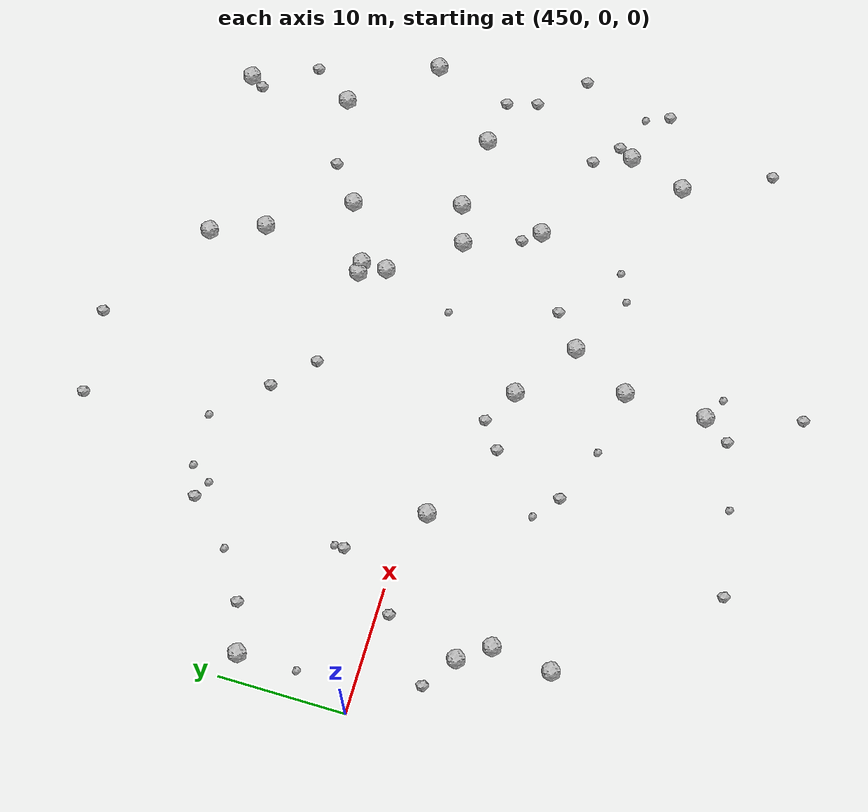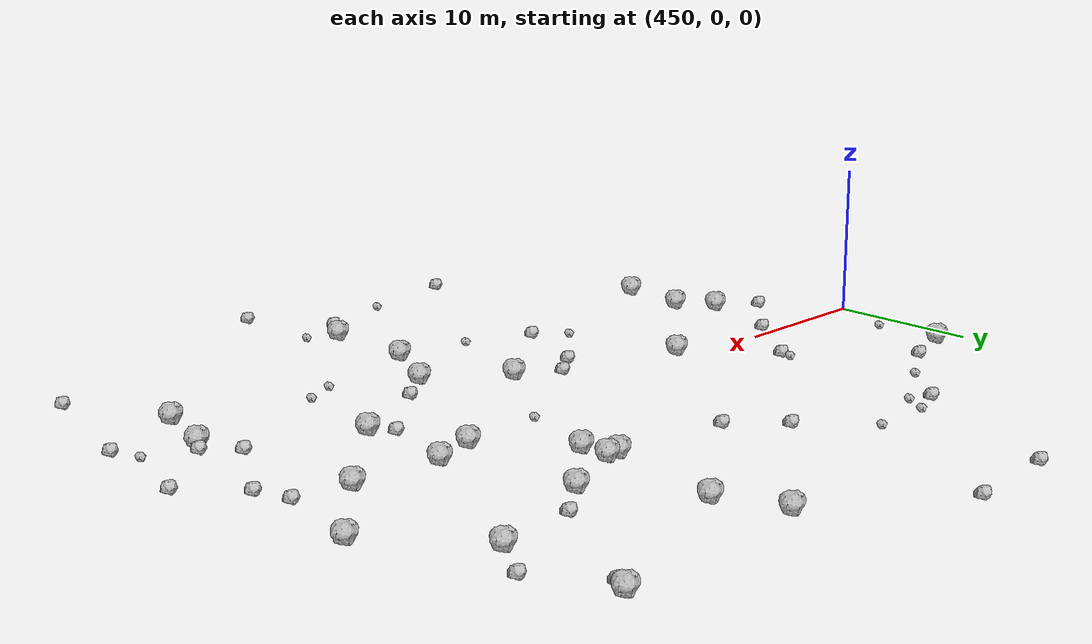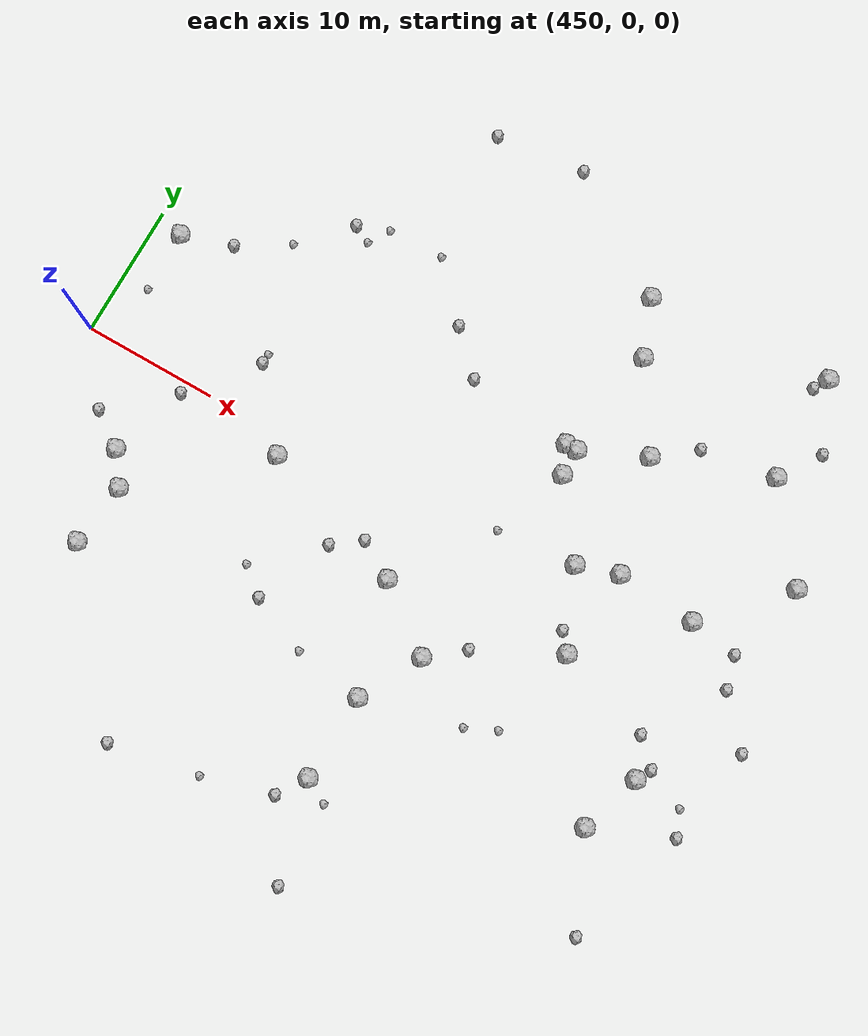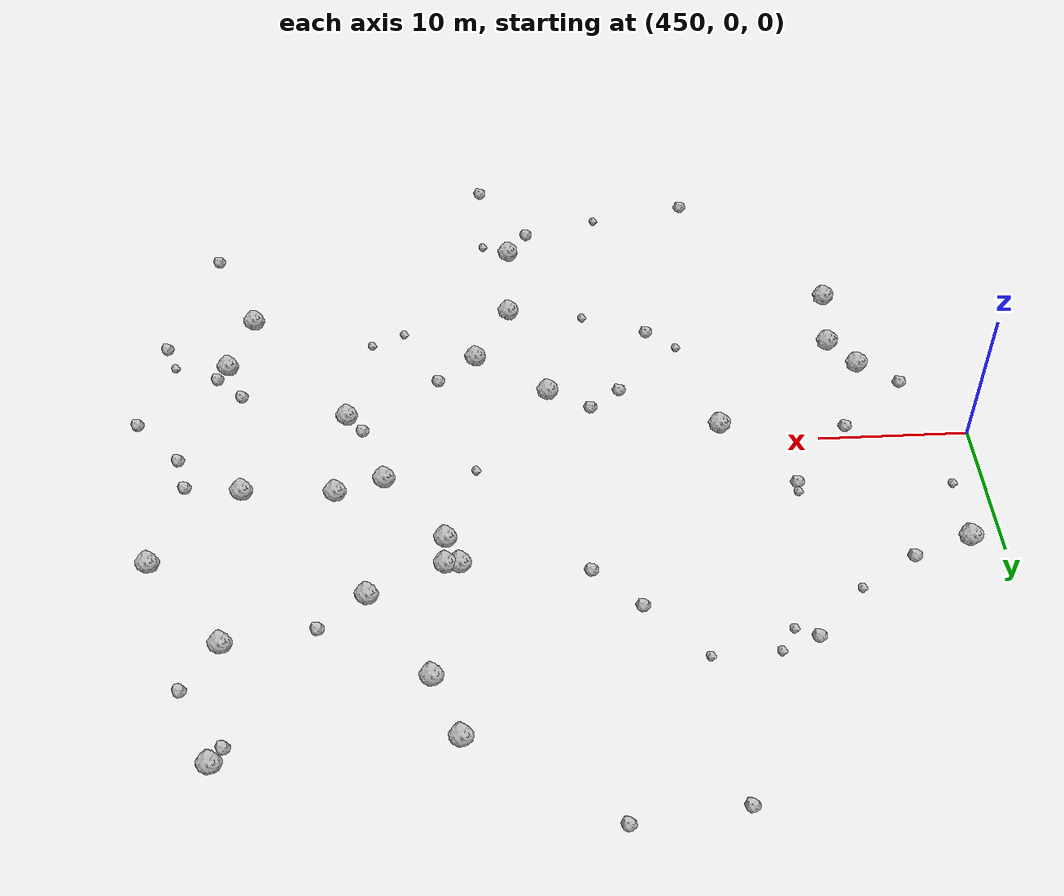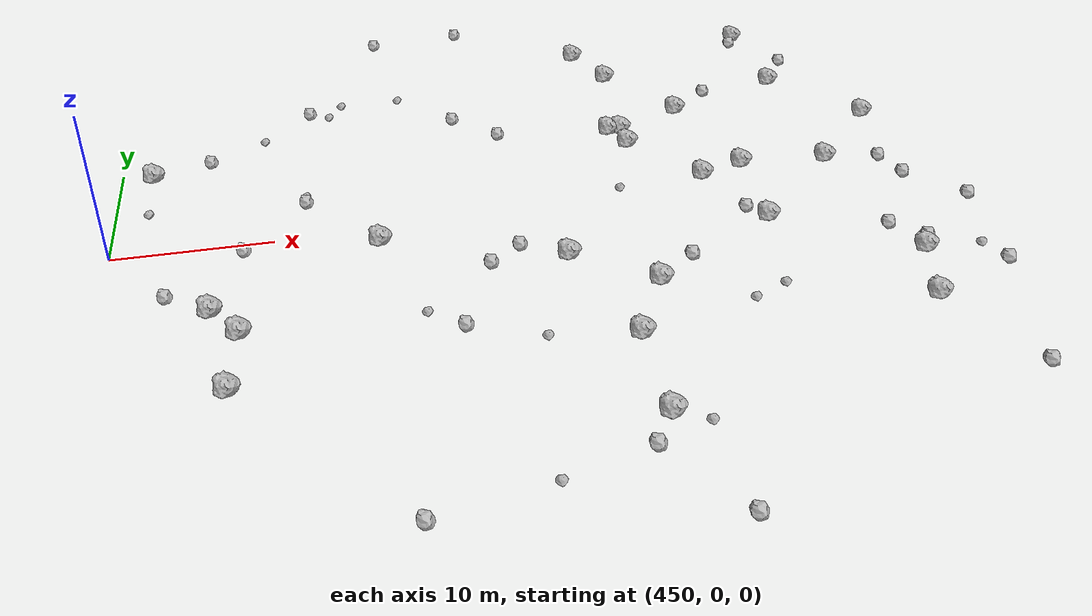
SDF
<sdf version="1.6">
 <world name="default">
  <include><uri>model://sun</uri></include>
  <model name="rock1_12_3">
   <include><uri>model://rock1</uri><pose>499.8130624036631 -8.828640635403218 0.5 0 0 0</pose></include>
  </model>
  <model name="rock1_12_4">
   <include><uri>model://rock1</uri><pose>457.40032643819046 -13.809218499824897 0.5 0 0 0</pose></include>
  </model>
  <model name="rock1_12_5">
   <include><uri>model://rock1</uri><pose>498.1280678960113 23.00474485403332 0.5 0 0 0</pose></include>
  </model>
  <model name="rock1_12_6">
   <include><uri>model://rock1</uri><pose>498.26262728188755 14.830964768897609 0.5 0 0 0</pose></include>
  </model>
  <model name="rock1_12_7">
   <include><uri>model://rock1</uri><pose>466.5238363929152 -1.4128623891731777 0.5 0 0 0</pose></include>
  </model>
  <model name="rock1_12_8">
   <include><uri>model://rock1</uri><pose>503.2762453548577 8.467395264841912 0.5 0 0 0</pose></include>
  </model>
  <model name="rock1_12_9">
   <include><uri>model://rock1</uri><pose>497.9708487240062 2.7914273214208976 0.5 0 0 0</pose></include>
  </model>
  <model name="rock1_12_10">
   <include><uri>model://rock1</uri><pose>477.82725968770575 -5.234184165995941 0.5 0 0 0</pose></include>
  </model>
  <model name="rock1_12_11">
   <include><uri>model://rock1</uri><pose>457.9387894605667 -9.051463532168224 0.5 0 0 0</pose></include>
  </model>
  <model name="rock1_12_12">
   <include><uri>model://rock1</uri><pose>484.0297189917614 9.531449243101399 0.5 0 0 0</pose></include>
  </model>
  <model name="rock1_12_13">
   <include><uri>model://rock1</uri><pose>482.6734188101493 -8.826977777789402 0.5 0 0 0</pose></include>
  </model>
  <model name="rock1_12_14">
   <include><uri>model://rock1</uri><pose>480.01631037651936 -19.998438910902543 0.5 0 0 0</pose></include>
  </model>
  <model name="rock1_12_15">
   <include><uri>model://rock1</uri><pose>491.42399132349675 -3.573042904597589 0.5 0 0 0</pose></include>
  </model>
  <model name="rock1_12_16">
   <include><uri>model://rock1</uri><pose>484.9261825643337 9.5073410927494 0.5 0 0 0</pose></include>
  </model>
  <model name="rock1_12_17">
   <include><uri>model://rock1</uri><pose>480.21251047130346 -13.489704923686137 0.5 0 0 0</pose></include>
  </model>
  <model name="rock1_12_18">
   <include><uri>model://rock1</uri><pose>491.95316374365086 3.2221449881121487 0.5 0 0 0</pose></include>
  </model>
  <model name="rock1_12_19">
   <include><uri>model://rock1</uri><pose>456.28643673180903 -6.717294685874268 0.5 0 0 0</pose></include>
  </model>
  <model name="rock1_12_20">
   <include><uri>model://rock1</uri><pose>452.07974039987664 9.170462043802146 0.5 0 0 0</pose></include>
  </model>
  <model name="rock1_12_21">
   <include><uri>model://rock1</uri><pose>488.8331631413457 2.22558355087304 0.5 0 0 0</pose></include>
  </model>
  <model name="rock1_12_22">
   <include><uri>model://rock1</uri><pose>489.70748792871206 11.670441116033828 0.5 0 0 0</pose></include>
  </model>
  <model name="rock1_12_23">
   <include><uri>model://rock1</uri><pose>485.7983008220556 17.820552126078162 0.5 0 0 0</pose></include>
  </model>
  <model name="rock1_12_24">
   <include><uri>model://rock1</uri><pose>484.9042597154939 7.451707932498898 0.5 0 0 0</pose></include>
  </model>
  <model name="rock1_12_25">
   <include><uri>model://rock1</uri><pose>498.3486688160148 -13.4292609751692 0.5 0 0 0</pose></include>
  </model>
  <model name="rock1_12_26">
   <include><uri>model://rock1</uri><pose>484.1369805016633 22.023985334564905 0.5 0 0 0</pose></include>
  </model>
  <model name="rock2_12_0">
   <include><uri>model://rock2</uri><pose>475.0039561237248 -3.59590949892587 0.3 0 0 0</pose></include>
  </model>
  <model name="rock2_12_1">
   <include><uri>model://rock2</uri><pose>481.93673953702404 -27.395528409244815 0.3 0 0 0</pose></include>
  </model>
  <model name="rock2_12_2">
   <include><uri>model://rock2</uri><pose>478.56976280894315 -22.13603558106054 0.3 0 0 0</pose></include>
  </model>
  <model name="rock2_12_3">
   <include><uri>model://rock2</uri><pose>501.4074318983091 -20.214873481837433 0.3 0 0 0</pose></include>
  </model>
  <model name="rock2_12_4">
   <include><uri>model://rock2</uri><pose>462.11780617066836 3.9165423338724423 0.3 0 0 0</pose></include>
  </model>
  <model name="rock2_12_5">
   <include><uri>model://rock2</uri><pose>455.8280850946145 10.428978807251866 0.3 0 0 0</pose></include>
  </model>
  <model name="rock2_12_6">
   <include><uri>model://rock2</uri><pose>492.58770321994916 13.990789874576038 0.3 0 0 0</pose></include>
  </model>
  <model name="rock2_12_7">
   <include><uri>model://rock2</uri><pose>505.3814088770143 -3.5982407487191317 0.3 0 0 0</pose></include>
  </model>
  <model name="rock2_12_8">
   <include><uri>model://rock2</uri><pose>500.3272788484736 17.974812715177826 0.3 0 0 0</pose></include>
  </model>
  <model name="rock2_12_9">
   <include><uri>model://rock2</uri><pose>468.3998627887736 27.229345731140825 0.3 0 0 0</pose></include>
  </model>
  <model name="rock2_12_10">
   <include><uri>model://rock2</uri><pose>500.4345632146146 -7.699797447282361 0.3 0 0 0</pose></include>
  </model>
  <model name="rock2_12_11">
   <include><uri>model://rock2</uri><pose>497.4692331939029 21.953233639380585 0.3 0 0 0</pose></include>
  </model>
  <model name="rock2_12_12">
   <include><uri>model://rock2</uri><pose>490.33463526264285 -2.2335926786986526 0.3 0 0 0</pose></include>
  </model>
  <model name="rock2_12_13">
   <include><uri>model://rock2</uri><pose>470.5552343491592 -10.850371588970038 0.3 0 0 0</pose></include>
  </model>
  <model name="rock2_12_14">
   <include><uri>model://rock2</uri><pose>453.64648808662304 -4.854879383053834 0.3 0 0 0</pose></include>
  </model>
  <model name="rock2_12_15">
   <include><uri>model://rock2</uri><pose>498.62594774371246 -5.901129874804209 0.3 0 0 0</pose></include>
  </model>
  <model name="rock2_12_16">
   <include><uri>model://rock2</uri><pose>472.9412807599574 -5.145270968876275 0.3 0 0 0</pose></include>
  </model>
  <model name="rock2_12_17">
   <include><uri>model://rock2</uri><pose>501.6639968273952 2.2307725424180234 0.3 0 0 0</pose></include>
  </model>
  <model name="rock2_12_18">
   <include><uri>model://rock2</uri><pose>473.0411740010955 13.327201261618903 0.3 0 0 0</pose></include>
  </model>
  <model name="rock2_12_19">
   <include><uri>model://rock2</uri><pose>475.2148243480675 27.98253462756187 0.3 0 0 0</pose></include>
  </model>
  <model name="rock2_12_20">
   <include><uri>model://rock2</uri><pose>504.2015061120821 -10.932713663520769 0.3 0 0 0</pose></include>
  </model>
  <model name="rock2_12_21">
   <include><uri>model://rock2</uri><pose>475.9497735643526 10.432626599488074 0.3 0 0 0</pose></include>
  </model>
  <model name="rock2_12_22">
   <include><uri>model://rock2</uri><pose>485.2610273945845 -6.699108656397382 0.3 0 0 0</pose></include>
  </model>
  <model name="rock2_12_23">
   <include><uri>model://rock2</uri><pose>466.59593166729525 -24.846716412973986 0.3 0 0 0</pose></include>
  </model>
  <model name="rock2_12_24">
   <include><uri>model://rock2</uri><pose>458.1331697010966 -0.8971571040232504 0.3 0 0 0</pose></include>
  </model>
  <model name="rock2_12_25">
   <include><uri>model://rock2</uri><pose>462.80621102064026 16.17512881538994 0.3 0 0 0</pose></include>
  </model>
  <model name="rock2_12_26">
   <include><uri>model://rock2</uri><pose>502.3395148325571 -0.19946131620990215 0.3 0 0 0</pose></include>
  </model>
  <model name="rock3_12_0">
   <include><uri>model://rock3</uri><pose>462.1198511662728 4.64527285189142 0.2 0 0 0</pose></include>
  </model>
  <model name="rock3_12_1">
   <include><uri>model://rock3</uri><pose>503.4229492722164 -9.0880257059749 0.2 0 0 0</pose></include>
  </model>
  <model name="rock3_12_2">
   <include><uri>model://rock3</uri><pose>474.9295246478435 -12.7252352018074 0.2 0 0 0</pose></include>
  </model>
  <model name="rock3_12_3">
   <include><uri>model://rock3</uri><pose>468.5612869383696 -9.251174221779817 0.2 0 0 0</pose></include>
  </model>
  <model name="rock3_12_4">
   <include><uri>model://rock3</uri><pose>487.6151936456345 -11.659576661346328 0.2 0 0 0</pose></include>
  </model>
  <model name="rock3_12_5">
   <include><uri>model://rock3</uri><pose>452.04992907053514 4.4963175754492255 0.2 0 0 0</pose></include>
  </model>
  <model name="rock3_12_6">
   <include><uri>model://rock3</uri><pose>482.81462269302574 1.6678051980747988 0.2 0 0 0</pose></include>
  </model>
  <model name="rock3_12_7">
   <include><uri>model://rock3</uri><pose>469.3623010962876 17.18139347595445 0.2 0 0 0</pose></include>
  </model>
  <model name="rock3_12_8">
   <include><uri>model://rock3</uri><pose>465.12791185933514 17.047718409379783 0.2 0 0 0</pose></include>
  </model>
  <model name="rock3_12_9">
   <include><uri>model://rock3</uri><pose>481.81229313442174 -21.03898949005731 0.2 0 0 0</pose></include>
  </model>
  <model name="rock3_12_10">
   <include><uri>model://rock3</uri><pose>459.4968463889332 12.659345829625316 0.2 0 0 0</pose></include>
  </model>
  <model name="rock3_12_11">
   <include><uri>model://rock3</uri><pose>464.14118529987064 15.463090116206466 0.2 0 0 0</pose></include>
  </model>
  <model name="rock3_12_12">
   <include><uri>model://rock3</uri><pose>489.8552007068969 -10.620685629798139 0.2 0 0 0</pose></include>
  </model>
  <model name="rock3_12_13">
   <include><uri>model://rock3</uri><pose>473.3208066882835 -23.65192101251628 0.2 0 0 0</pose></include>
  </model>
 </world>
</sdf>
